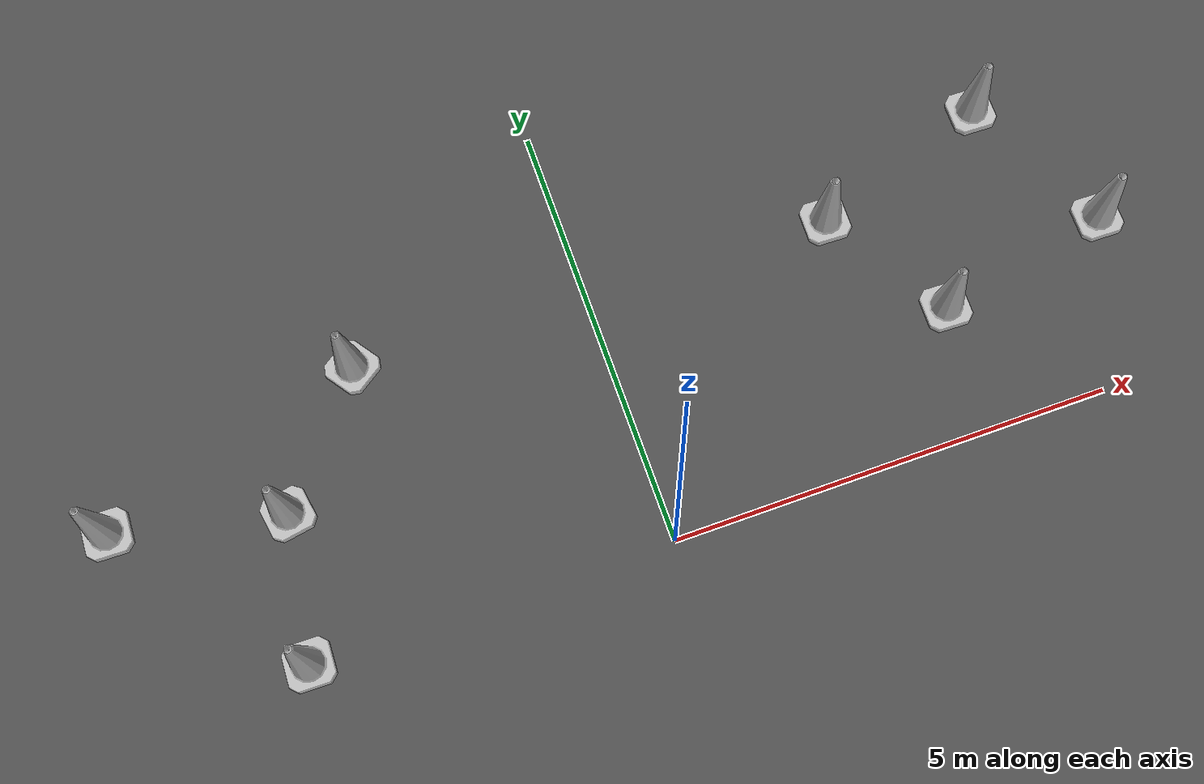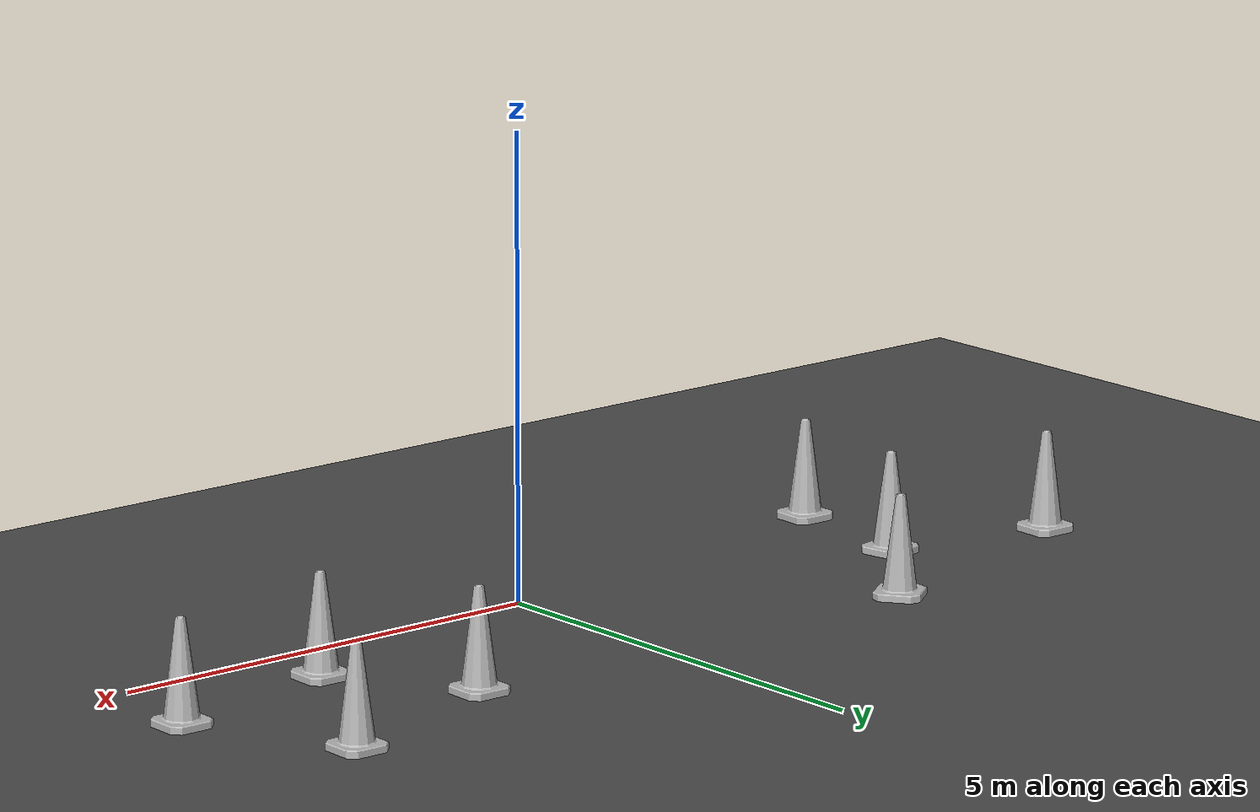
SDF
<sdf version="1.7">
 <world name="default">
  <model name="ground_plane">
   <static>1</static>
   <link name="link">
    <collision name="collision">
     <geometry><plane><normal>0 0 1</normal><size>100 100</size></plane></geometry>
     <surface><friction><ode><mu>100</mu><mu2>50</mu2></ode></friction></surface>
    </collision>
    <visual name="visual">
     <cast_shadows>0</cast_shadows>
     <geometry><plane><normal>0 0 1</normal><size>100 100</size></plane></geometry>
     <material>
      <script><uri>file://media/materials/scripts/gazebo.material</uri><name>Gazebo/Grey</name></script>
     </material>
    </visual>
    <velocity_decay><linear>0</linear><angular>0</angular></velocity_decay>
   </link>
  </model>
  <model name="Construction Cone_0_clone_2">
   <link name="link">
    <collision name="collision">
     <geometry>
      <mesh><scale>10 10 10</scale><uri>model://construction_cone/meshes/construction_cone.dae</uri></mesh>
     </geometry>
    </collision>
    <visual name="visual">
     <geometry>
      <mesh><scale>10 10 10</scale><uri>model://construction_cone/meshes/construction_cone.dae</uri></mesh>
     </geometry>
    </visual>
    <velocity_decay><linear>0</linear><angular>0</angular></velocity_decay>
    <inertial>
     <inertia><ixx>1</ixx><ixy>0</ixy><ixz>0</ixz><iyy>1</iyy><iyz>0</iyz><izz>1</izz></inertia>
     <mass>1</mass>
    </inertial>
   </link>
   <pose>-3.99078 0.00334 0.224663 1.4e-05 -2.8e-05 -0.022802</pose>
   <static>0</static>
  </model>
  <model name="Construction Cone_0_clone_0_clone_clone_2">
   <link name="link">
    <collision name="collision">
     <geometry>
      <mesh><scale>10 10 10</scale><uri>model://construction_cone/meshes/construction_cone.dae</uri></mesh>
     </geometry>
    </collision>
    <visual name="visual">
     <geometry>
      <mesh><scale>10 10 10</scale><uri>model://construction_cone/meshes/construction_cone.dae</uri></mesh>
     </geometry>
    </visual>
    <velocity_decay><linear>0</linear><angular>0</angular></velocity_decay>
    <inertial>
     <inertia><ixx>1</ixx><ixy>0</ixy><ixz>0</ixz><iyy>1</iyy><iyz>0</iyz><izz>1</izz></inertia>
     <mass>1</mass>
    </inertial>
   </link>
   <pose>3.67993 1.41106 0.224663 1.4e-05 -2.8e-05 -0.030023</pose>
   <static>0</static>
  </model>
  <model name="Construction Cone_0_clone_0_clone_clone_3">
   <link name="link">
    <collision name="collision">
     <geometry>
      <mesh><scale>10 10 10</scale><uri>model://construction_cone/meshes/construction_cone.dae</uri></mesh>
     </geometry>
    </collision>
    <visual name="visual">
     <geometry>
      <mesh><scale>10 10 10</scale><uri>model://construction_cone/meshes/construction_cone.dae</uri></mesh>
     </geometry>
    </visual>
    <velocity_decay><linear>0</linear><angular>0</angular></velocity_decay>
    <inertial>
     <inertia><ixx>1</ixx><ixy>0</ixy><ixz>0</ixz><iyy>1</iyy><iyz>0</iyz><izz>1</izz></inertia>
     <mass>1</mass>
    </inertial>
   </link>
   <pose>2.81107 2.81541 0.22554 8e-06 -1.5e-05 -0.029303</pose>
   <static>0</static>
  </model>
  <model name="Construction Cone_0_clone_0_clone_clone_5">
   <link name="link">
    <collision name="collision">
     <geometry>
      <mesh><scale>10 10 10</scale><uri>model://construction_cone/meshes/construction_cone.dae</uri></mesh>
     </geometry>
    </collision>
    <visual name="visual">
     <geometry>
      <mesh><scale>10 10 10</scale><uri>model://construction_cone/meshes/construction_cone.dae</uri></mesh>
     </geometry>
    </visual>
    <velocity_decay><linear>0</linear><angular>0</angular></velocity_decay>
    <inertial>
     <inertia><ixx>1</ixx><ixy>0</ixy><ixz>0</ixz><iyy>1</iyy><iyz>0</iyz><izz>1</izz></inertia>
     <mass>1</mass>
    </inertial>
   </link>
   <pose>-2.67137 2.9349 0.224583 -3e-05 0.000121 -0.956608</pose>
   <static>0</static>
  </model>
  <model name="Construction Cone_0_clone_0_clone_clone_6">
   <link name="link">
    <collision name="collision">
     <geometry>
      <mesh><scale>10 10 10</scale><uri>model://construction_cone/meshes/construction_cone.dae</uri></mesh>
     </geometry>
    </collision>
    <visual name="visual">
     <geometry>
      <mesh><scale>10 10 10</scale><uri>model://construction_cone/meshes/construction_cone.dae</uri></mesh>
     </geometry>
    </visual>
    <velocity_decay><linear>0</linear><angular>0</angular></velocity_decay>
    <inertial>
     <inertia><ixx>1</ixx><ixy>0</ixy><ixz>0</ixz><iyy>1</iyy><iyz>0</iyz><izz>1</izz></inertia>
     <mass>1</mass>
    </inertial>
   </link>
   <pose>-3.76682 1.59823 0.224663 1.4e-05 -2.8e-05 -1.39679</pose>
   <static>0</static>
  </model>
  <model name="Construction Cone_0_clone_3_clone">
   <link name="link">
    <collision name="collision">
     <geometry>
      <mesh><scale>10 10 10</scale><uri>model://construction_cone/meshes/construction_cone.dae</uri></mesh>
     </geometry>
    </collision>
    <visual name="visual">
     <geometry>
      <mesh><scale>10 10 10</scale><uri>model://construction_cone/meshes/construction_cone.dae</uri></mesh>
     </geometry>
    </visual>
    <velocity_decay><linear>0</linear><angular>0</angular></velocity_decay>
    <inertial>
     <inertia><ixx>1</ixx><ixy>0</ixy><ixz>0</ixz><iyy>1</iyy><iyz>0</iyz><izz>1</izz></inertia>
     <mass>1</mass>
    </inertial>
   </link>
   <pose>-5.61793 2.0274 0.22554 1.6e-05 -7e-06 -0.022521</pose>
   <static>0</static>
  </model>
  <model name="Construction Cone_0_clone_3_clone_5">
   <link name="link">
    <collision name="collision">
     <geometry>
      <mesh><scale>10 10 10</scale><uri>model://construction_cone/meshes/construction_cone.dae</uri></mesh>
     </geometry>
    </collision>
    <visual name="visual">
     <geometry>
      <mesh><scale>10 10 10</scale><uri>model://construction_cone/meshes/construction_cone.dae</uri></mesh>
     </geometry>
    </visual>
    <velocity_decay><linear>0</linear><angular>0</angular></velocity_decay>
    <inertial>
     <inertia><ixx>1</ixx><ixy>0</ixy><ixz>0</ixz><iyy>1</iyy><iyz>0</iyz><izz>1</izz></inertia>
     <mass>1</mass>
    </inertial>
   </link>
   <pose>4.88826 3.52542 0.224663 1.4e-05 -2.8e-05 -0.022794</pose>
   <static>0</static>
  </model>
  <model name="Construction Cone_0_clone_3_clone_6">
   <link name="link">
    <collision name="collision">
     <geometry>
      <mesh><scale>10 10 10</scale><uri>model://construction_cone/meshes/construction_cone.dae</uri></mesh>
     </geometry>
    </collision>
    <visual name="visual">
     <geometry>
      <mesh><scale>10 10 10</scale><uri>model://construction_cone/meshes/construction_cone.dae</uri></mesh>
     </geometry>
    </visual>
    <velocity_decay><linear>0</linear><angular>0</angular></velocity_decay>
    <inertial>
     <inertia><ixx>1</ixx><ixy>0</ixy><ixz>0</ixz><iyy>1</iyy><iyz>0</iyz><izz>1</izz></inertia>
     <mass>1</mass>
    </inertial>
   </link>
   <pose>5.70104 1.83623 0.224663 1.4e-05 -2.8e-05 -0.022794</pose>
   <static>0</static>
  </model>
  <model name="big_asphalt_plane">
   <static>1</static>
   <link name="link">
    <collision name="collision"><geometry><box><size>50 50 0.1</size></box></geometry></collision>
    <visual name="visual">
     <cast_shadows>0</cast_shadows>
     <geometry><box><size>50 50 0.1</size></box></geometry>
     <material>
      <script>
       <uri>model://big_asphalt_plane/materials/scripts</uri>
       <uri>model://big_asphalt_plane/materials/textures</uri>
       <name>vrc/asphalt</name>
      </script>
     </material>
    </visual>
   </link>
   <pose>-3.11131 2.07361 0 0 -0 0</pose>
  </model>
 </world>
</sdf>
